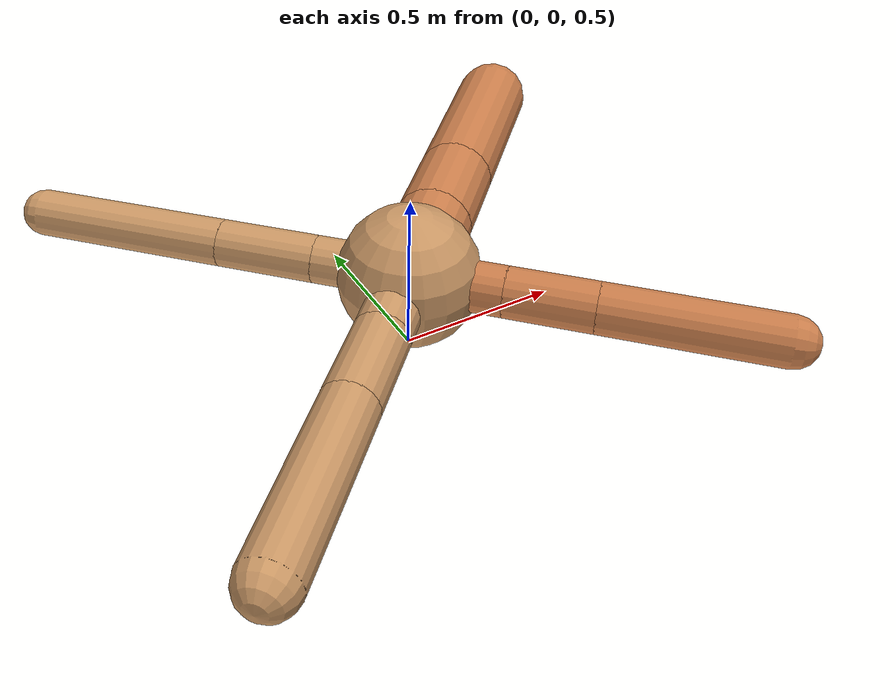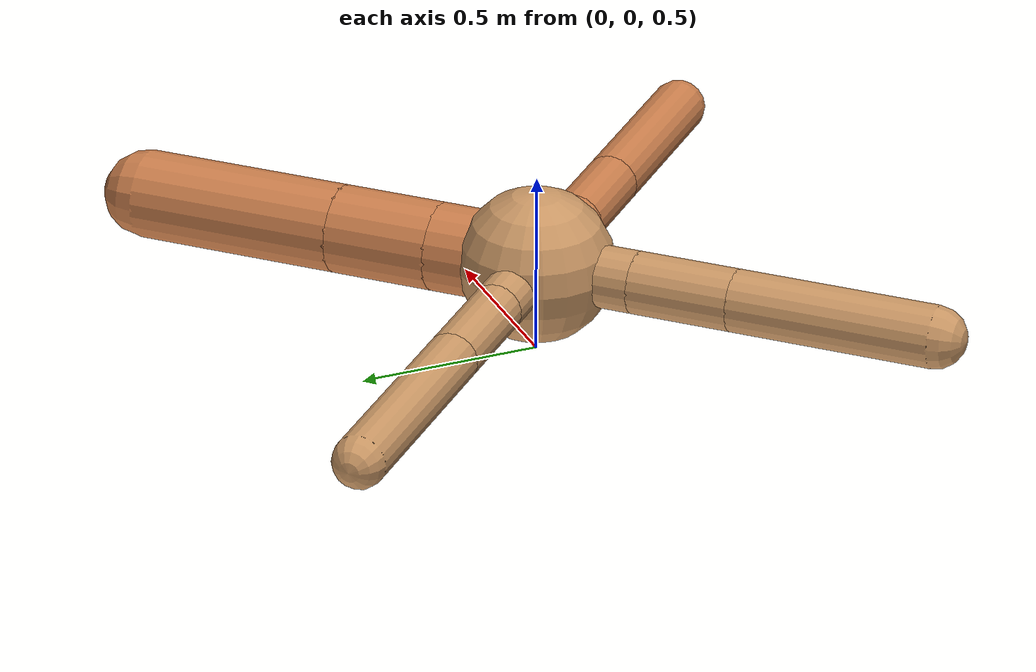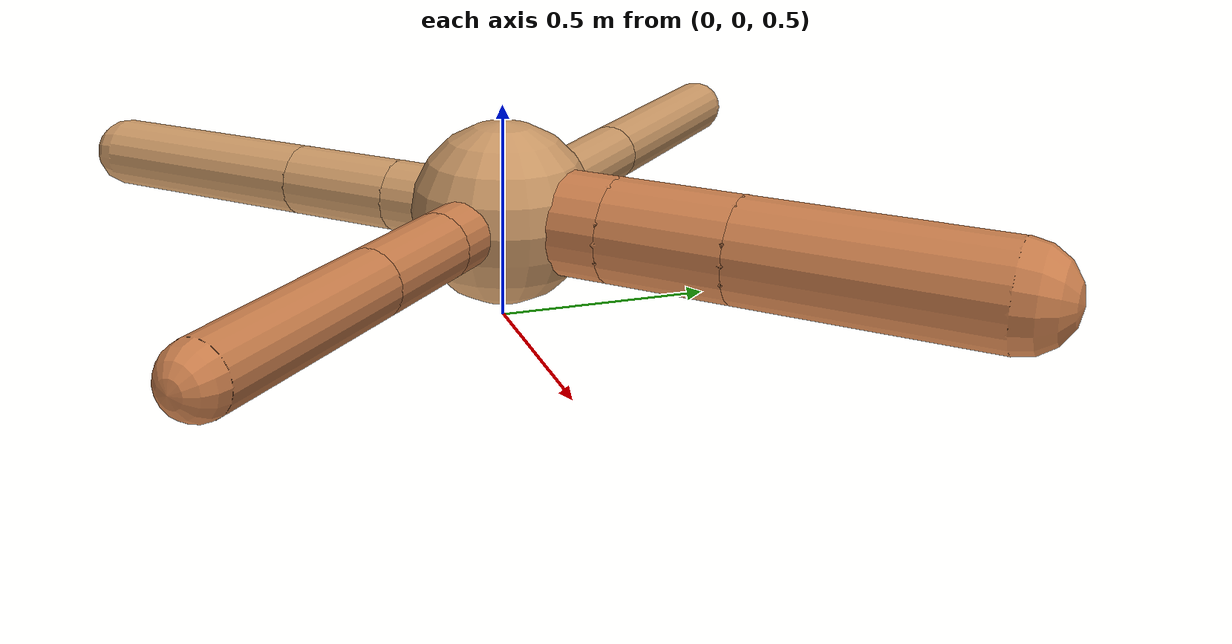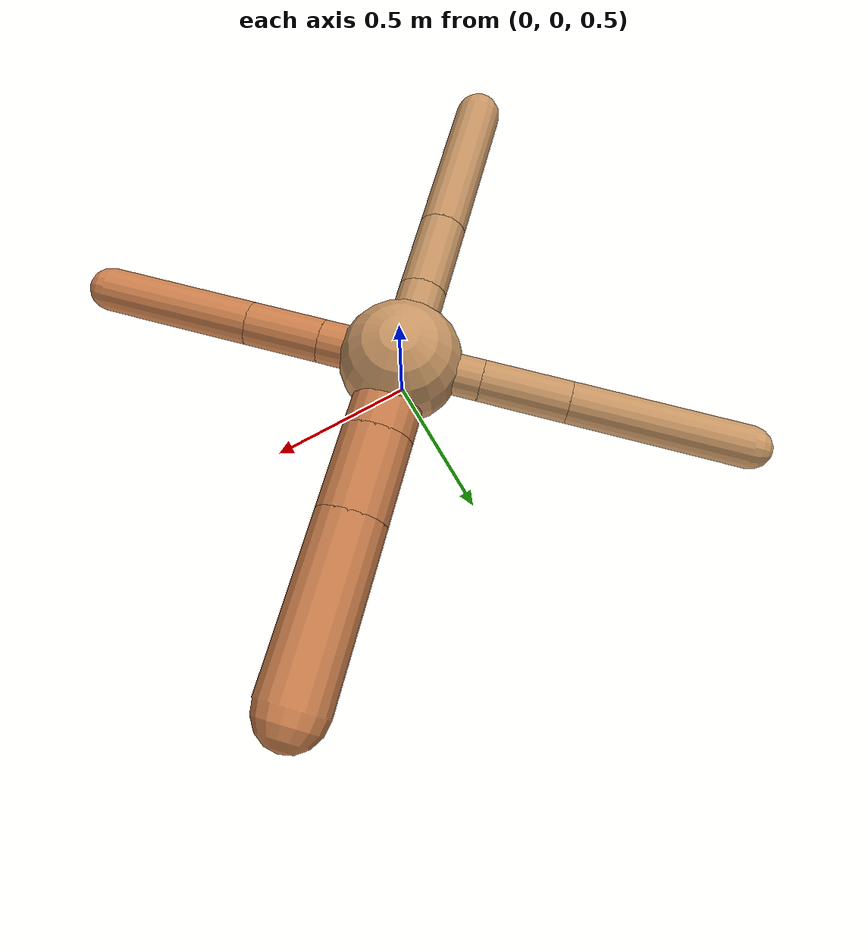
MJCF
<?xml version="1.0" ?>
<mujoco model="ant">

	<compiler angle="degree" coordinate="local" inertiafromgeom="true"/>

	<option integrator="RK4" timestep="0.01"/>

	<custom>

		<numeric data="0.0 0.0 0.55 1.0 0.0 0.0 0.0 0.0 1.0 0.0 -1.0 0.0 -1.0 0.0 1.0" name="init_qpos"/>

	</custom>

	<default>

		<joint armature="1" damping="1" limited="true"/>

		<geom conaffinity="0" condim="3" density="5.0" friction="1.5 0.1 0.1" margin="0.01" rgba="0.8 0.6 0.4 1"/>

	</default>

	<worldbody>

		<body name="torso" pos="0 0 0.75">

			<geom name="torso_geom" pos="0 0 0" size="0.21162563872142665" type="sphere"/>

			<!--joint armature="0" damping="0" limited="false" margin="0.01" name="root" pos="0 0 0" type="free"/-->

			<body name="front_left_leg" pos="0 0 0">

				<geom fromto="0 0 0 0.2 0.2 0" name="aux_1_geom" size="0.12014430474246446" type="capsule" rgba=".8 .5 .3 1"/>

				<body name="aux_1" pos="0.2 0.2 0">

					<joint axis="0 0 1" name="hip_1" pos="0.0 0.0 0.0" range="-40 40" type="hinge"/>

					<geom fromto="0 0 0 0.202496591613745 0.202496591613745 0" name="left_leg_geom" size="0.12014430474246446" type="capsule" rgba=".8 .5 .3 1"/>

					<body pos="0.202496591613745 0.202496591613745 0" name="front_left_foot">

						<joint axis="-1 1 0" name="ankle_1" pos="0.0 0.0 0.0" range="30 100" type="hinge"/>

						<geom fromto="0 0 0 0.40499318322749 0.40499318322749 0" name="left_ankle_geom" size="0.12014430474246446" type="capsule" rgba=".8 .5 .3 1"/>

					</body>

				</body>

			</body>

			<body name="front_right_leg" pos="0 0 0">

				<geom fromto="0 0 0 -0.2 0.2 0" name="aux_2_geom" size="0.07173232398995044" type="capsule"/>

				<body name="aux_2" pos="-0.2 0.2 0">

					<joint axis="0 0 1" name="hip_2" pos="0.0 0.0 0.0" range="-40 40" type="hinge"/>

					<geom fromto="0 0 0 -0.21057108700043178 0.21057108700043178 0" name="right_leg_geom" size="0.07173232398995044" type="capsule"/>

					<body pos="-0.21057108700043178 0.21057108700043178 0" name="front_right_foot">

						<joint axis="1 1 0" name="ankle_2" pos="0.0 0.0 0.0" range="-100 -30" type="hinge"/>

						<geom fromto="0 0 0 -0.42114217400086357 0.42114217400086357 0" name="right_ankle_geom" size="0.07173232398995044" type="capsule"/>

					</body>

				</body>

			</body>

			<body name="left_back_leg" pos="0 0 0">

				<geom fromto="0 0 0 -0.2 -0.2 0" name="aux_3_geom" size="0.08423830809523349" type="capsule"/>

				<body name="aux_3" pos="-0.2 -0.2 0">

					<joint axis="0 0 1" name="hip_3" pos="0.0 0.0 0.0" range="-40 40" type="hinge"/>

					<geom fromto="0 0 0 -0.1965379910645288 -0.1965379910645288 0" name="back_leg_geom" size="0.08423830809523349" type="capsule"/>

					<body pos="-0.1965379910645288 -0.1965379910645288 0" name="left_back_foot">

						<joint axis="-1 1 0" name="ankle_3" pos="0.0 0.0 0.0" range="-100 -30" type="hinge"/>

						<geom fromto="0 0 0 -0.3930759821290576 -0.3930759821290576 0" name="third_ankle_geom" size="0.08423830809523349" type="capsule"/>

					</body>

				</body>

			</body>

			<body name="right_back_leg" pos="0 0 0">

				<geom fromto="0 0 0 0.2 -0.2 0" name="aux_4_geom" size="0.07599917062973796" type="capsule" rgba=".8 .5 .3 1"/>

				<body name="aux_4" pos="0.2 -0.2 0">

					<joint axis="0 0 1" name="hip_4" pos="0.0 0.0 0.0" range="-40 40" type="hinge"/>

					<geom fromto="0 0 0 0.18394538344878675 -0.18394538344878675 0" name="rightback_leg_geom" size="0.07599917062973796" type="capsule" rgba=".8 .5 .3 1"/>

					<body pos="0.18394538344878675 -0.18394538344878675 0" name="right_back_foot">

						<joint axis="1 1 0" name="ankle_4" pos="0.0 0.0 0.0" range="30 100" type="hinge"/>

						<geom fromto="0 0 0 0.3678907668975735 -0.3678907668975735 0" name="fourth_ankle_geom" size="0.07599917062973796" type="capsule" rgba=".8 .5 .3 1"/>

					</body>

				</body>

			</body>

		</body>

	</worldbody>

	<actuator>

		<motor ctrllimited="true" ctrlrange="-1.0 1.0" joint="hip_4" gear="150"/>

		<motor ctrllimited="true" ctrlrange="-1.0 1.0" joint="ankle_4" gear="150"/>

		<motor ctrllimited="true" ctrlrange="-1.0 1.0" joint="hip_1" gear="150"/>

		<motor ctrllimited="true" ctrlrange="-1.0 1.0" joint="ankle_1" gear="150"/>

		<motor ctrllimited="true" ctrlrange="-1.0 1.0" joint="hip_2" gear="150"/>

		<motor ctrllimited="true" ctrlrange="-1.0 1.0" joint="ankle_2" gear="150"/>

		<motor ctrllimited="true" ctrlrange="-1.0 1.0" joint="hip_3" gear="150"/>

		<motor ctrllimited="true" ctrlrange="-1.0 1.0" joint="ankle_3" gear="150"/>

	</actuator>

</mujoco>
